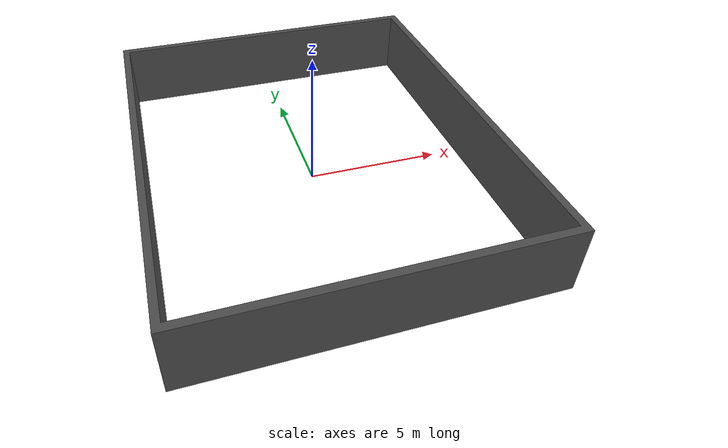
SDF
<?xml version="1.0" ?>
<sdf version="1.8">
  <model name="lab_wall">
    <static>true</static>
    <pose>0 0 0 0 0 0</pose>

    <link name="wall_link">

      <!-- Visual mesh -->
      <visual name="wall_visual">
        <geometry>
          <mesh>
            <uri>model://lab_wall/meshes/wall.stl</uri>
            <scale>0.0025 0.0025 0.001</scale>
          </mesh>
        </geometry>
         <material>
          <ambient>0.2 0.2 0.2 1</ambient>
          <diffuse>0.3 0.3 0.3 1</diffuse>
          <specular>0.05 0.05 0.05 1</specular>
        </material>
      </visual>

      <!-- Simple collision -->
      <collision name="wall_collision">
        <pose>0 0 0.4 0 0 0</pose>
        <geometry>
          <box>
            <size>1.2 0.8 0.8</size>
          </box>
        </geometry>
      </collision>

    </link>
  </model>
</sdf>
